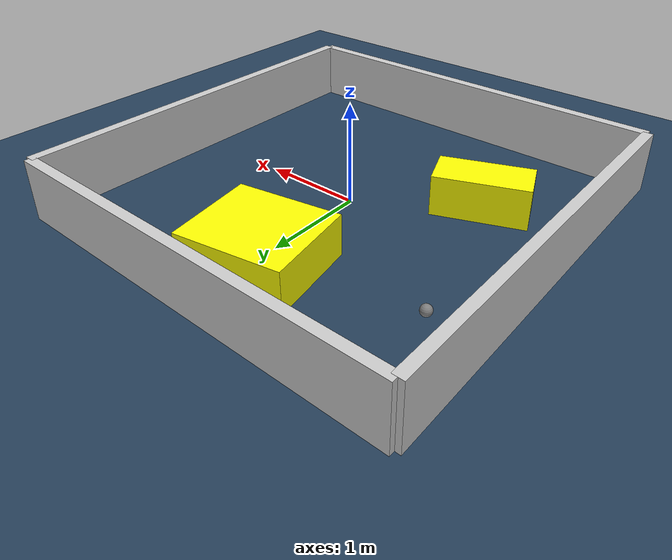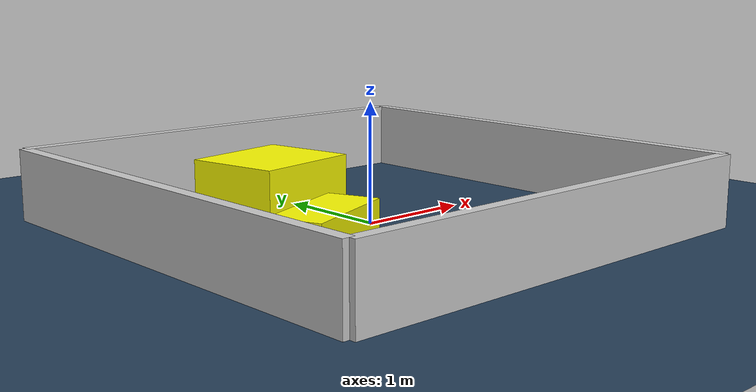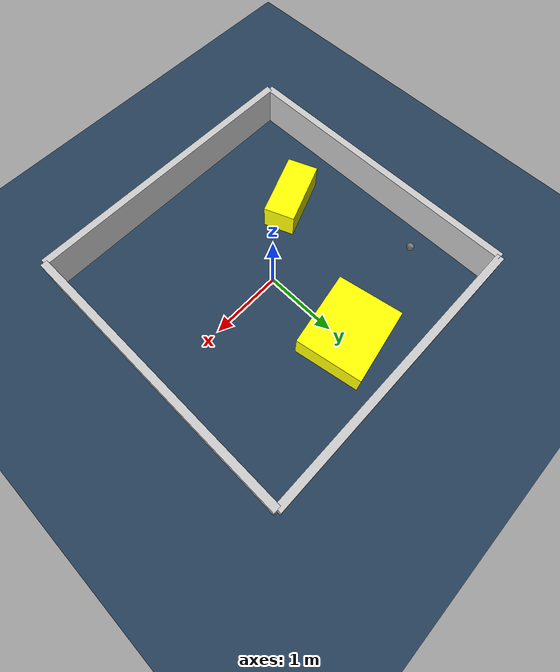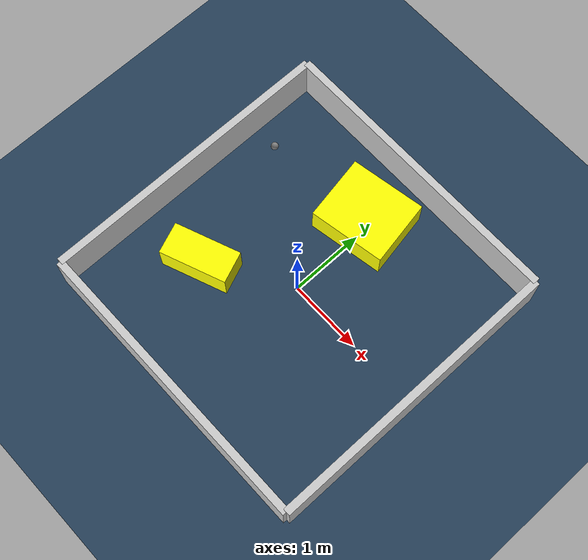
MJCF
<?xml version="1.0" ?>
<mujoco model="generated_environment">
  <option timestep="0.01" integrator="RK4" cone="elliptic"/>
  <default>
    <geom density="1"/>
  </default>
  <asset>
    <texture builtin="gradient" height="3072" rgb1="0.3 0.5 0.7" rgb2="0 0 0" type="skybox" width="512"/>
    <texture builtin="checker" height="300" mark="edge" markrgb="0.8 0.8 0.8" name="groundplane" rgb1="0.2 0.3 0.4" rgb2="0.1 0.2 0.3" type="2d" width="300"/>
    <material name="groundplane" reflectance="0.2" texrepeat="5 5" texture="groundplane" texuniform="true"/>
    <material name="robot" rgba="0.0 1.0 0.0 1"/>
  </asset>
  <worldbody>
    <light dir="0 0 -1" directional="true" pos="0 0 1.5"/>
    <geom condim="4" friction="1.0 0.005 0.001" material="groundplane" name="floor" size="0 0 0.05" type="plane"/>
    <body name="walls">
      <geom name="wall_1" condim="4" pos="-2.0 0.0 0.3" rgba="0.800000011920929 0.800000011920929 0.800000011920929 1.0" size="0.05 2.0 0.3" type="box"/>
      <geom name="wall_2" condim="4" pos="2.0 0.0 0.3" rgba="0.800000011920929 0.800000011920929 0.800000011920929 1.0" size="0.05 2.0 0.3" type="box"/>
      <geom name="wall_3" condim="4" pos="0.0 -2.0 0.3" rgba="0.800000011920929 0.800000011920929 0.800000011920929 1.0" size="2.0 0.05 0.3" type="box"/>
      <geom name="wall_4" condim="4" pos="0.0 2.0 0.3" rgba="0.800000011920929 0.800000011920929 0.800000011920929 1.0" size="2.0 0.05 0.3" type="box"/>
    </body>
    <body name="robot">
      <joint name="joint_x" type="slide" pos="0 0 0" axis="1 0 0"/>
      <joint name="joint_y" type="slide" pos="0 0 0" axis="0 1 0"/>
      <geom name="robot" type="sphere" pos="-1.5621114909906566 1.0397401853942387 0.2" size="0.05" mass="5." friction="1.0 0.005 0.0001" condim="4"/>
      <site name="sensor_ball"/>
    </body>
    <body name="obstacle_1_movable">
      <geom name="obstacle_1_movable" condim="4" pos="-1.0356567988009453 -0.6546835118823765 0.2" euler="0 0 111.53731265139426" friction="1.0 0.005 0.001" rgba="1 1 0 1" size="0.21297978319432076 0.447713602895062 0.2" type="box" mass="0.1"/>
      <joint type="free"/>
    </body>
    <body name="obstacle_2_movable">
      <geom name="obstacle_2_movable" condim="4" pos="-0.06773654292408215 1.2288815514768499 0.2" euler="0 0 190.24005868468268" friction="1.0 0.005 0.001" rgba="1 1 0 1" size="0.5107440214899392 0.442985387775253 0.2" type="box" mass="0.1"/>
      <joint type="free"/>
    </body>
  </worldbody>
  <actuator>
    <motor name="actuator_x" joint="joint_x" gear="1" ctrlrange="-1 1"/>
    <motor name="actuator_y" joint="joint_y" gear="1" ctrlrange="-1 1"/>
  </actuator>
</mujoco>
